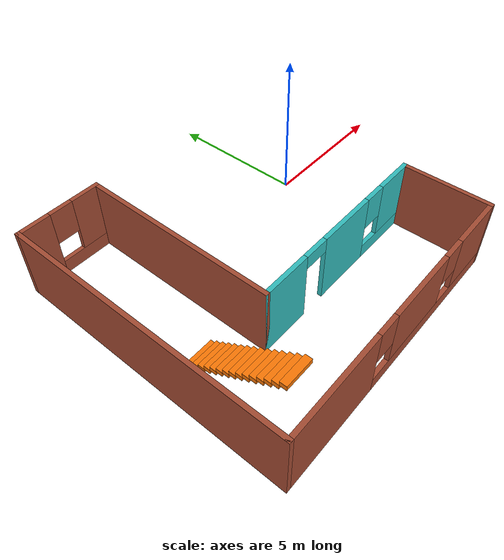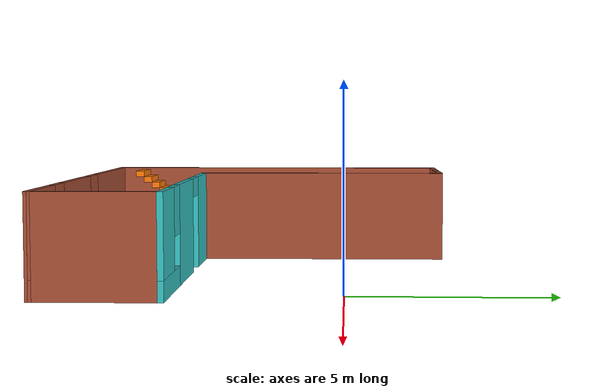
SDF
<?xml version='1.0'?>
<sdf version='1.6'>
  <model name='mybuilding'>
    <pose frame=''>-4.06699 -2.17001 0 0 -0 0</pose>
    <link name='Stairs_0'>
      <visual name='Stairs_0_Visual_0'>
        <pose frame=''>-3.4379 -0.704601 0.083333 0 -0 0</pose>
        <geometry>
          <box>
            <size>1 0.233333 0.166667</size>
          </box>
        </geometry>
        <material>
          <script>
            <uri>file://media/materials/scripts/gazebo.material</uri>
            <name>Gazebo/Grey</name>
          </script>
          <ambient>0.996078 0.47451 0.0196078 1</ambient>
        </material>
        <meta>
          <layer>0</layer>
        </meta>
      </visual>
      <collision name='Stairs_0_Collision_0'>
        <geometry>
          <box>
            <size>1 0.233333 0.166667</size>
          </box>
        </geometry>
        <pose frame=''>-3.4379 -0.704601 0.083333 0 -0 0</pose>
      </collision>
      <visual name='Stairs_0_Visual_1'>
        <pose frame=''>-3.4379 -0.937934 0.25 0 -0 0</pose>
        <geometry>
          <box>
            <size>1 0.233333 0.166667</size>
          </box>
        </geometry>
        <material>
          <script>
            <uri>file://media/materials/scripts/gazebo.material</uri>
            <name>Gazebo/Grey</name>
          </script>
          <ambient>0.996078 0.47451 0.0196078 1</ambient>
        </material>
        <meta>
          <layer>0</layer>
        </meta>
      </visual>
      <collision name='Stairs_0_Collision_1'>
        <geometry>
          <box>
            <size>1 0.233333 0.166667</size>
          </box>
        </geometry>
        <pose frame=''>-3.4379 -0.937934 0.25 0 -0 0</pose>
      </collision>
      <visual name='Stairs_0_Visual_2'>
        <pose frame=''>-3.4379 -1.17127 0.416667 0 -0 0</pose>
        <geometry>
          <box>
            <size>1 0.233333 0.166667</size>
          </box>
        </geometry>
        <material>
          <script>
            <uri>file://media/materials/scripts/gazebo.material</uri>
            <name>Gazebo/Grey</name>
          </script>
          <ambient>0.996078 0.47451 0.0196078 1</ambient>
        </material>
        <meta>
          <layer>0</layer>
        </meta>
      </visual>
      <collision name='Stairs_0_Collision_2'>
        <geometry>
          <box>
            <size>1 0.233333 0.166667</size>
          </box>
        </geometry>
        <pose frame=''>-3.4379 -1.17127 0.416667 0 -0 0</pose>
      </collision>
      <visual name='Stairs_0_Visual_3'>
        <pose frame=''>-3.4379 -1.4046 0.583333 0 -0 0</pose>
        <geometry>
          <box>
            <size>1 0.233333 0.166667</size>
          </box>
        </geometry>
        <material>
          <script>
            <uri>file://media/materials/scripts/gazebo.material</uri>
            <name>Gazebo/Grey</name>
          </script>
          <ambient>0.996078 0.47451 0.0196078 1</ambient>
        </material>
        <meta>
          <layer>0</layer>
        </meta>
      </visual>
      <collision name='Stairs_0_Collision_3'>
        <geometry>
          <box>
            <size>1 0.233333 0.166667</size>
          </box>
        </geometry>
        <pose frame=''>-3.4379 -1.4046 0.583333 0 -0 0</pose>
      </collision>
      <visual name='Stairs_0_Visual_4'>
        <pose frame=''>-3.4379 -1.63793 0.75 0 -0 0</pose>
        <geometry>
          <box>
            <size>1 0.233333 0.166667</size>
          </box>
        </geometry>
        <material>
          <script>
            <uri>file://media/materials/scripts/gazebo.material</uri>
            <name>Gazebo/Grey</name>
          </script>
          <ambient>0.996078 0.47451 0.0196078 1</ambient>
        </material>
        <meta>
          <layer>0</layer>
        </meta>
      </visual>
      <collision name='Stairs_0_Collision_4'>
        <geometry>
          <box>
            <size>1 0.233333 0.166667</size>
          </box>
        </geometry>
        <pose frame=''>-3.4379 -1.63793 0.75 0 -0 0</pose>
      </collision>
      <visual name='Stairs_0_Visual_5'>
        <pose frame=''>-3.4379 -1.87127 0.916667 0 -0 0</pose>
        <geometry>
          <box>
            <size>1 0.233333 0.166667</size>
          </box>
        </geometry>
        <material>
          <script>
            <uri>file://media/materials/scripts/gazebo.material</uri>
            <name>Gazebo/Grey</name>
          </script>
          <ambient>0.996078 0.47451 0.0196078 1</ambient>
        </material>
        <meta>
          <layer>0</layer>
        </meta>
      </visual>
      <collision name='Stairs_0_Collision_5'>
        <geometry>
          <box>
            <size>1 0.233333 0.166667</size>
          </box>
        </geometry>
        <pose frame=''>-3.4379 -1.87127 0.916667 0 -0 0</pose>
      </collision>
      <visual name='Stairs_0_Visual_6'>
        <pose frame=''>-3.4379 -2.1046 1.08333 0 -0 0</pose>
        <geometry>
          <box>
            <size>1 0.233333 0.166667</size>
          </box>
        </geometry>
        <material>
          <script>
            <uri>file://media/materials/scripts/gazebo.material</uri>
            <name>Gazebo/Grey</name>
          </script>
          <ambient>0.996078 0.47451 0.0196078 1</ambient>
        </material>
        <meta>
          <layer>0</layer>
        </meta>
      </visual>
      <collision name='Stairs_0_Collision_6'>
        <geometry>
          <box>
            <size>1 0.233333 0.166667</size>
          </box>
        </geometry>
        <pose frame=''>-3.4379 -2.1046 1.08333 0 -0 0</pose>
      </collision>
      <visual name='Stairs_0_Visual_7'>
        <pose frame=''>-3.4379 -2.33793 1.25 0 -0 0</pose>
        <geometry>
          <box>
            <size>1 0.233333 0.166667</size>
          </box>
        </geometry>
        <material>
          <script>
            <uri>file://media/materials/scripts/gazebo.material</uri>
            <name>Gazebo/Grey</name>
          </script>
          <ambient>0.996078 0.47451 0.0196078 1</ambient>
        </material>
        <meta>
          <layer>0</layer>
        </meta>
      </visual>
      <collision name='Stairs_0_Collision_7'>
        <geometry>
          <box>
            <size>1 0.233333 0.166667</size>
          </box>
        </geometry>
        <pose frame=''>-3.4379 -2.33793 1.25 0 -0 0</pose>
      </collision>
      <visual name='Stairs_0_Visual_8'>
        <pose frame=''>-3.4379 -2.57127 1.41667 0 -0 0</pose>
        <geometry>
          <box>
            <size>1 0.233333 0.166667</size>
          </box>
        </geometry>
        <material>
          <script>
            <uri>file://media/materials/scripts/gazebo.material</uri>
            <name>Gazebo/Grey</name>
          </script>
          <ambient>0.996078 0.47451 0.0196078 1</ambient>
        </material>
        <meta>
          <layer>0</layer>
        </meta>
      </visual>
      <collision name='Stairs_0_Collision_8'>
        <geometry>
          <box>
            <size>1 0.233333 0.166667</size>
          </box>
        </geometry>
        <pose frame=''>-3.4379 -2.57127 1.41667 0 -0 0</pose>
      </collision>
      <visual name='Stairs_0_Visual_9'>
        <pose frame=''>-3.4379 -2.8046 1.58333 0 -0 0</pose>
        <geometry>
          <box>
            <size>1 0.233333 0.166667</size>
          </box>
        </geometry>
        <material>
          <script>
            <uri>file://media/materials/scripts/gazebo.material</uri>
            <name>Gazebo/Grey</name>
          </script>
          <ambient>0.996078 0.47451 0.0196078 1</ambient>
        </material>
        <meta>
          <layer>0</layer>
        </meta>
      </visual>
      <collision name='Stairs_0_Collision_9'>
        <geometry>
          <box>
            <size>1 0.233333 0.166667</size>
          </box>
        </geometry>
        <pose frame=''>-3.4379 -2.8046 1.58333 0 -0 0</pose>
      </collision>
      <visual name='Stairs_0_Visual_10'>
        <pose frame=''>-3.4379 -3.03793 1.75 0 -0 0</pose>
        <geometry>
          <box>
            <size>1 0.233333 0.166667</size>
          </box>
        </geometry>
        <material>
          <script>
            <uri>file://media/materials/scripts/gazebo.material</uri>
            <name>Gazebo/Grey</name>
          </script>
          <ambient>0.996078 0.47451 0.0196078 1</ambient>
        </material>
        <meta>
          <layer>0</layer>
        </meta>
      </visual>
      <collision name='Stairs_0_Collision_10'>
        <geometry>
          <box>
            <size>1 0.233333 0.166667</size>
          </box>
        </geometry>
        <pose frame=''>-3.4379 -3.03793 1.75 0 -0 0</pose>
      </collision>
      <visual name='Stairs_0_Visual_11'>
        <pose frame=''>-3.4379 -3.27127 1.91667 0 -0 0</pose>
        <geometry>
          <box>
            <size>1 0.233333 0.166667</size>
          </box>
        </geometry>
        <material>
          <script>
            <uri>file://media/materials/scripts/gazebo.material</uri>
            <name>Gazebo/Grey</name>
          </script>
          <ambient>0.996078 0.47451 0.0196078 1</ambient>
        </material>
        <meta>
          <layer>0</layer>
        </meta>
      </visual>
      <collision name='Stairs_0_Collision_11'>
        <geometry>
          <box>
            <size>1 0.233333 0.166667</size>
          </box>
        </geometry>
        <pose frame=''>-3.4379 -3.27127 1.91667 0 -0 0</pose>
      </collision>
      <visual name='Stairs_0_Visual_12'>
        <pose frame=''>-3.4379 -3.5046 2.08333 0 -0 0</pose>
        <geometry>
          <box>
            <size>1 0.233333 0.166667</size>
          </box>
        </geometry>
        <material>
          <script>
            <uri>file://media/materials/scripts/gazebo.material</uri>
            <name>Gazebo/Grey</name>
          </script>
          <ambient>0.996078 0.47451 0.0196078 1</ambient>
        </material>
        <meta>
          <layer>0</layer>
        </meta>
      </visual>
      <collision name='Stairs_0_Collision_12'>
        <geometry>
          <box>
            <size>1 0.233333 0.166667</size>
          </box>
        </geometry>
        <pose frame=''>-3.4379 -3.5046 2.08333 0 -0 0</pose>
      </collision>
      <visual name='Stairs_0_Visual_13'>
        <pose frame=''>-3.4379 -3.73793 2.25 0 -0 0</pose>
        <geometry>
          <box>
            <size>1 0.233333 0.166667</size>
          </box>
        </geometry>
        <material>
          <script>
            <uri>file://media/materials/scripts/gazebo.material</uri>
            <name>Gazebo/Grey</name>
          </script>
          <ambient>0.996078 0.47451 0.0196078 1</ambient>
        </material>
        <meta>
          <layer>0</layer>
        </meta>
      </visual>
      <collision name='Stairs_0_Collision_13'>
        <geometry>
          <box>
            <size>1 0.233333 0.166667</size>
          </box>
        </geometry>
        <pose frame=''>-3.4379 -3.73793 2.25 0 -0 0</pose>
      </collision>
      <visual name='Stairs_0_Visual_14'>
        <pose frame=''>-3.4379 -3.97127 2.41667 0 -0 0</pose>
        <geometry>
          <box>
            <size>1 0.233333 0.166667</size>
          </box>
        </geometry>
        <material>
          <script>
            <uri>file://media/materials/scripts/gazebo.material</uri>
            <name>Gazebo/Grey</name>
          </script>
          <ambient>0.996078 0.47451 0.0196078 1</ambient>
        </material>
        <meta>
          <layer>0</layer>
        </meta>
      </visual>
      <collision name='Stairs_0_Collision_14'>
        <geometry>
          <box>
            <size>1 0.233333 0.166667</size>
          </box>
        </geometry>
        <pose frame=''>-3.4379 -3.97127 2.41667 0 -0 0</pose>
      </collision>
    </link>
    <link name='Wall_0'>
      <collision name='Wall_0_Collision'>
        <geometry>
          <box>
            <size>10 0.15 2.5</size>
          </box>
        </geometry>
        <pose frame=''>0 0 1.25 0 -0 0</pose>
      </collision>
      <visual name='Wall_0_Visual'>
        <pose frame=''>0 0 1.25 0 -0 0</pose>
        <geometry>
          <box>
            <size>10 0.15 2.5</size>
          </box>
        </geometry>
        <material>
          <script>
            <uri>file://media/materials/scripts/gazebo.material</uri>
            <name>Gazebo/Bricks</name>
          </script>
          <ambient>1 1 1 1</ambient>
        </material>
        <meta>
          <layer>0</layer>
        </meta>
      </visual>
      <pose frame=''>-4.925 5e-06 0 0 0 -1.5708</pose>
    </link>
    <link name='Wall_1'>
      <pose frame=''>-5e-06 -4.92499 0 0 -0 0</pose>
      <visual name='Wall_1_Visual_0'>
        <pose frame=''>-3.14676 0 1.25 0 -0 0</pose>
        <geometry>
          <box>
            <size>3.70647 0.15 2.5</size>
          </box>
        </geometry>
        <material>
          <script>
            <uri>file://media/materials/scripts/gazebo.material</uri>
            <name>Gazebo/Bricks</name>
          </script>
          <ambient>1 1 1 1</ambient>
        </material>
        <meta>
          <layer>0</layer>
        </meta>
      </visual>
      <collision name='Wall_1_Collision_0'>
        <geometry>
          <box>
            <size>3.70647 0.15 2.5</size>
          </box>
        </geometry>
        <pose frame=''>-3.14676 0 1.25 0 -0 0</pose>
      </collision>
      <visual name='Wall_1_Visual_1'>
        <pose frame=''>1.85324 0 0.25 0 -0 0</pose>
        <geometry>
          <box>
            <size>6.29353 0.15 0.5</size>
          </box>
        </geometry>
        <material>
          <script>
            <uri>file://media/materials/scripts/gazebo.material</uri>
            <name>Gazebo/Bricks</name>
          </script>
          <ambient>1 1 1 1</ambient>
        </material>
        <meta>
          <layer>0</layer>
        </meta>
      </visual>
      <collision name='Wall_1_Collision_1'>
        <geometry>
          <box>
            <size>6.29353 0.15 0.5</size>
          </box>
        </geometry>
        <pose frame=''>1.85324 0 0.25 0 -0 0</pose>
      </collision>
      <visual name='Wall_1_Visual_2'>
        <pose frame=''>0.829704 0 1.5 0 -0 0</pose>
        <geometry>
          <box>
            <size>2.64646 0.15 2</size>
          </box>
        </geometry>
        <material>
          <script>
            <uri>file://media/materials/scripts/gazebo.material</uri>
            <name>Gazebo/Bricks</name>
          </script>
          <ambient>1 1 1 1</ambient>
        </material>
        <meta>
          <layer>0</layer>
        </meta>
      </visual>
      <collision name='Wall_1_Collision_2'>
        <geometry>
          <box>
            <size>2.64646 0.15 2</size>
          </box>
        </geometry>
        <pose frame=''>0.829704 0 1.5 0 -0 0</pose>
      </collision>
      <visual name='Wall_1_Visual_3'>
        <pose frame=''>3.97647 0 1.5 0 -0 0</pose>
        <geometry>
          <box>
            <size>2.04707 0.15 2</size>
          </box>
        </geometry>
        <material>
          <script>
            <uri>file://media/materials/scripts/gazebo.material</uri>
            <name>Gazebo/Bricks</name>
          </script>
          <ambient>1 1 1 1</ambient>
        </material>
        <meta>
          <layer>0</layer>
        </meta>
      </visual>
      <collision name='Wall_1_Collision_3'>
        <geometry>
          <box>
            <size>2.04707 0.15 2</size>
          </box>
        </geometry>
        <pose frame=''>3.97647 0 1.5 0 -0 0</pose>
      </collision>
      <visual name='Wall_1_Visual_4'>
        <pose frame=''>-0.893526 0 1.9 0 -0 0</pose>
        <geometry>
          <box>
            <size>0.8 0.15 1.2</size>
          </box>
        </geometry>
        <material>
          <script>
            <uri>file://media/materials/scripts/gazebo.material</uri>
            <name>Gazebo/Bricks</name>
          </script>
          <ambient>1 1 1 1</ambient>
        </material>
        <meta>
          <layer>0</layer>
        </meta>
      </visual>
      <collision name='Wall_1_Collision_4'>
        <geometry>
          <box>
            <size>0.8 0.15 1.2</size>
          </box>
        </geometry>
        <pose frame=''>-0.893526 0 1.9 0 -0 0</pose>
      </collision>
      <visual name='Wall_1_Visual_5'>
        <pose frame=''>2.55293 0 1.9 0 -0 0</pose>
        <geometry>
          <box>
            <size>0.8 0.15 1.2</size>
          </box>
        </geometry>
        <material>
          <script>
            <uri>file://media/materials/scripts/gazebo.material</uri>
            <name>Gazebo/Bricks</name>
          </script>
          <ambient>1 1 1 1</ambient>
        </material>
        <meta>
          <layer>0</layer>
        </meta>
      </visual>
      <collision name='Wall_1_Collision_5'>
        <geometry>
          <box>
            <size>0.8 0.15 1.2</size>
          </box>
        </geometry>
        <pose frame=''>2.55293 0 1.9 0 -0 0</pose>
      </collision>
    </link>
    <link name='Wall_10'>
      <collision name='Wall_10_Collision'>
        <geometry>
          <box>
            <size>3.02045 0.15 2.5</size>
          </box>
        </geometry>
        <pose frame=''>0 0 1.25 0 -0 0</pose>
      </collision>
      <visual name='Wall_10_Visual'>
        <pose frame=''>0 0 1.25 0 -0 0</pose>
        <geometry>
          <box>
            <size>3.02045 0.15 2.5</size>
          </box>
        </geometry>
        <material>
          <script>
            <uri>file://media/materials/scripts/gazebo.material</uri>
            <name>Gazebo/Bricks</name>
          </script>
          <ambient>1 1 1 1</ambient>
        </material>
        <meta>
          <layer>0</layer>
        </meta>
      </visual>
      <pose frame=''>4.92478 -3.48977 0 0 -0 1.57095</pose>
    </link>
    <link name='Wall_13'>
      <pose frame=''>-3.5 4.92501 0 0 -0 0</pose>
      <visual name='Wall_13_Visual_0'>
        <pose frame=''>-0.930512 0 1.25 0 -0 0</pose>
        <geometry>
          <box>
            <size>1.13898 0.15 2.5</size>
          </box>
        </geometry>
        <material>
          <script>
            <uri>file://media/materials/scripts/gazebo.material</uri>
            <name>Gazebo/Bricks</name>
          </script>
          <ambient>1 1 1 1</ambient>
        </material>
        <meta>
          <layer>0</layer>
        </meta>
      </visual>
      <collision name='Wall_13_Collision_0'>
        <geometry>
          <box>
            <size>1.13898 0.15 2.5</size>
          </box>
        </geometry>
        <pose frame=''>-0.930512 0 1.25 0 -0 0</pose>
      </collision>
      <visual name='Wall_13_Visual_1'>
        <pose frame=''>0.569488 0 0.25 0 -0 0</pose>
        <geometry>
          <box>
            <size>1.86102 0.15 0.5</size>
          </box>
        </geometry>
        <material>
          <script>
            <uri>file://media/materials/scripts/gazebo.material</uri>
            <name>Gazebo/Bricks</name>
          </script>
          <ambient>1 1 1 1</ambient>
        </material>
        <meta>
          <layer>0</layer>
        </meta>
      </visual>
      <collision name='Wall_13_Collision_1'>
        <geometry>
          <box>
            <size>1.86102 0.15 0.5</size>
          </box>
        </geometry>
        <pose frame=''>0.569488 0 0.25 0 -0 0</pose>
      </collision>
      <visual name='Wall_13_Visual_2'>
        <pose frame=''>0.969488 0 1.5 0 -0 0</pose>
        <geometry>
          <box>
            <size>1.06102 0.15 2</size>
          </box>
        </geometry>
        <material>
          <script>
            <uri>file://media/materials/scripts/gazebo.material</uri>
            <name>Gazebo/Bricks</name>
          </script>
          <ambient>1 1 1 1</ambient>
        </material>
        <meta>
          <layer>0</layer>
        </meta>
      </visual>
      <collision name='Wall_13_Collision_2'>
        <geometry>
          <box>
            <size>1.06102 0.15 2</size>
          </box>
        </geometry>
        <pose frame=''>0.969488 0 1.5 0 -0 0</pose>
      </collision>
      <visual name='Wall_13_Visual_3'>
        <pose frame=''>0.038976 0 1.9 0 -0 0</pose>
        <geometry>
          <box>
            <size>0.8 0.15 1.2</size>
          </box>
        </geometry>
        <material>
          <script>
            <uri>file://media/materials/scripts/gazebo.material</uri>
            <name>Gazebo/Bricks</name>
          </script>
          <ambient>1 1 1 1</ambient>
        </material>
        <meta>
          <layer>0</layer>
        </meta>
      </visual>
      <collision name='Wall_13_Collision_3'>
        <geometry>
          <box>
            <size>0.8 0.15 1.2</size>
          </box>
        </geometry>
        <pose frame=''>0.038976 0 1.9 0 -0 0</pose>
      </collision>
    </link>
    <link name='Wall_14'>
      <collision name='Wall_14_Collision'>
        <geometry>
          <box>
            <size>7 0.15 2.5</size>
          </box>
        </geometry>
        <pose frame=''>0 0 1.25 0 -0 0</pose>
      </collision>
      <visual name='Wall_14_Visual'>
        <pose frame=''>0 0 1.25 0 -0 0</pose>
        <geometry>
          <box>
            <size>7 0.15 2.5</size>
          </box>
        </geometry>
        <material>
          <script>
            <uri>file://media/materials/scripts/gazebo.material</uri>
            <name>Gazebo/Bricks</name>
          </script>
          <ambient>1 1 1 1</ambient>
        </material>
        <meta>
          <layer>0</layer>
        </meta>
      </visual>
      <pose frame=''>-2.07501 1.50001 0 0 0 -1.5708</pose>
    </link>
    <link name='Wall_16'>
      <pose frame=''>1.425 -1.92499 0 0 -0 0</pose>
      <visual name='Wall_16_Visual_0'>
        <pose frame=''>-2.67446 0 1.25 0 -0 0</pose>
        <geometry>
          <box>
            <size>1.80109 0.15 2.5</size>
          </box>
        </geometry>
        <material>
          <script>
            <uri>file://media/materials/scripts/gazebo.material</uri>
            <name>Gazebo/Turquoise</name>
          </script>
          <ambient>1 1 1 1</ambient>
        </material>
        <meta>
          <layer>0</layer>
        </meta>
      </visual>
      <collision name='Wall_16_Collision_0'>
        <geometry>
          <box>
            <size>1.80109 0.15 2.5</size>
          </box>
        </geometry>
        <pose frame=''>-2.67446 0 1.25 0 -0 0</pose>
      </collision>
      <visual name='Wall_16_Visual_1'>
        <pose frame=''>0.216145 0 1.25 0 -0 0</pose>
        <geometry>
          <box>
            <size>2.18011 0.15 2.5</size>
          </box>
        </geometry>
        <material>
          <script>
            <uri>file://media/materials/scripts/gazebo.material</uri>
            <name>Gazebo/Turquoise</name>
          </script>
          <ambient>1 1 1 1</ambient>
        </material>
        <meta>
          <layer>0</layer>
        </meta>
      </visual>
      <collision name='Wall_16_Collision_1'>
        <geometry>
          <box>
            <size>2.18011 0.15 2.5</size>
          </box>
        </geometry>
        <pose frame=''>0.216145 0 1.25 0 -0 0</pose>
      </collision>
      <visual name='Wall_16_Visual_2'>
        <pose frame=''>2.4406 0 0.25 0 -0 0</pose>
        <geometry>
          <box>
            <size>2.2688 0.15 0.5</size>
          </box>
        </geometry>
        <material>
          <script>
            <uri>file://media/materials/scripts/gazebo.material</uri>
            <name>Gazebo/Turquoise</name>
          </script>
          <ambient>1 1 1 1</ambient>
        </material>
        <meta>
          <layer>0</layer>
        </meta>
      </visual>
      <collision name='Wall_16_Collision_2'>
        <geometry>
          <box>
            <size>2.2688 0.15 0.5</size>
          </box>
        </geometry>
        <pose frame=''>2.4406 0 0.25 0 -0 0</pose>
      </collision>
      <visual name='Wall_16_Visual_3'>
        <pose frame=''>2.8406 0 1.5 0 -0 0</pose>
        <geometry>
          <box>
            <size>1.4688 0.15 2</size>
          </box>
        </geometry>
        <material>
          <script>
            <uri>file://media/materials/scripts/gazebo.material</uri>
            <name>Gazebo/Turquoise</name>
          </script>
          <ambient>1 1 1 1</ambient>
        </material>
        <meta>
          <layer>0</layer>
        </meta>
      </visual>
      <collision name='Wall_16_Collision_3'>
        <geometry>
          <box>
            <size>1.4688 0.15 2</size>
          </box>
        </geometry>
        <pose frame=''>2.8406 0 1.5 0 -0 0</pose>
      </collision>
      <visual name='Wall_16_Visual_4'>
        <pose frame=''>1.7062 0 1.9 0 -0 0</pose>
        <geometry>
          <box>
            <size>0.8 0.15 1.2</size>
          </box>
        </geometry>
        <material>
          <script>
            <uri>file://media/materials/scripts/gazebo.material</uri>
            <name>Gazebo/Turquoise</name>
          </script>
          <ambient>1 1 1 1</ambient>
        </material>
        <meta>
          <layer>0</layer>
        </meta>
      </visual>
      <collision name='Wall_16_Collision_4'>
        <geometry>
          <box>
            <size>0.8 0.15 1.2</size>
          </box>
        </geometry>
        <pose frame=''>1.7062 0 1.9 0 -0 0</pose>
      </collision>
      <visual name='Wall_16_Visual_5'>
        <pose frame=''>-1.32391 0 2.25 0 -0 0</pose>
        <geometry>
          <box>
            <size>0.9 0.15 0.5</size>
          </box>
        </geometry>
        <material>
          <script>
            <uri>file://media/materials/scripts/gazebo.material</uri>
            <name>Gazebo/Turquoise</name>
          </script>
          <ambient>1 1 1 1</ambient>
        </material>
        <meta>
          <layer>0</layer>
        </meta>
      </visual>
      <collision name='Wall_16_Collision_5'>
        <geometry>
          <box>
            <size>0.9 0.15 0.5</size>
          </box>
        </geometry>
        <pose frame=''>-1.32391 0 2.25 0 -0 0</pose>
      </collision>
    </link>
    <static>1</static>
  </model>
</sdf>
